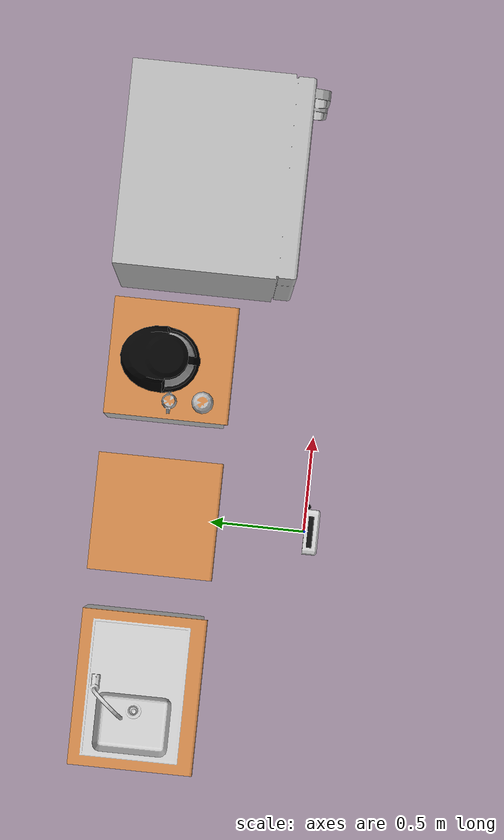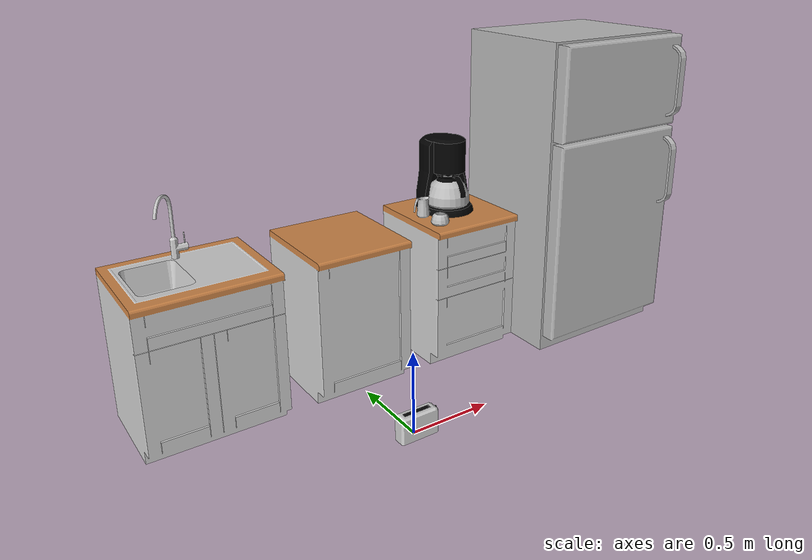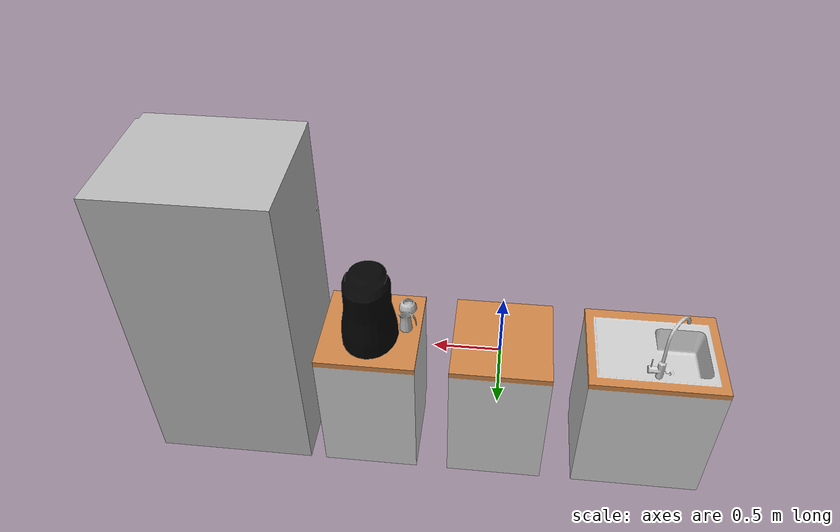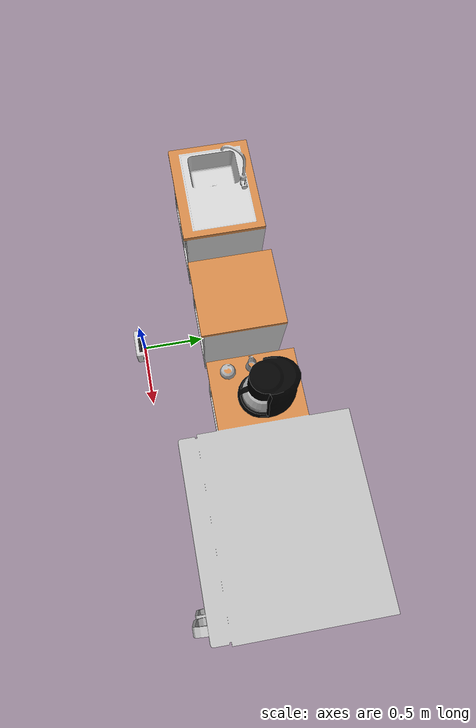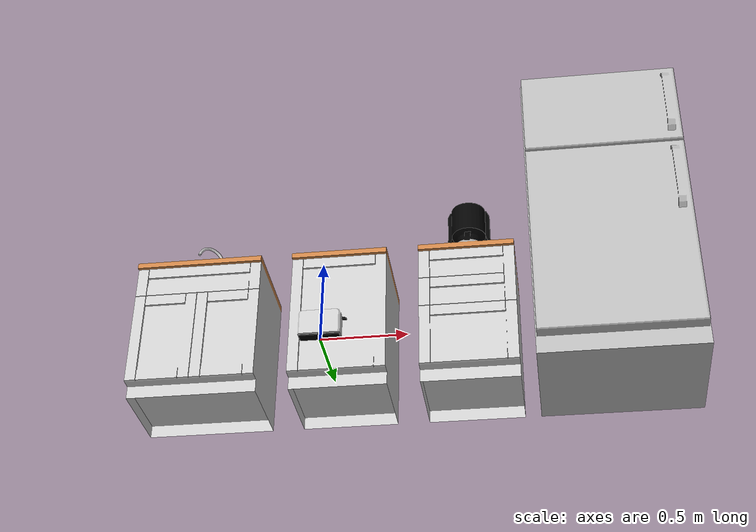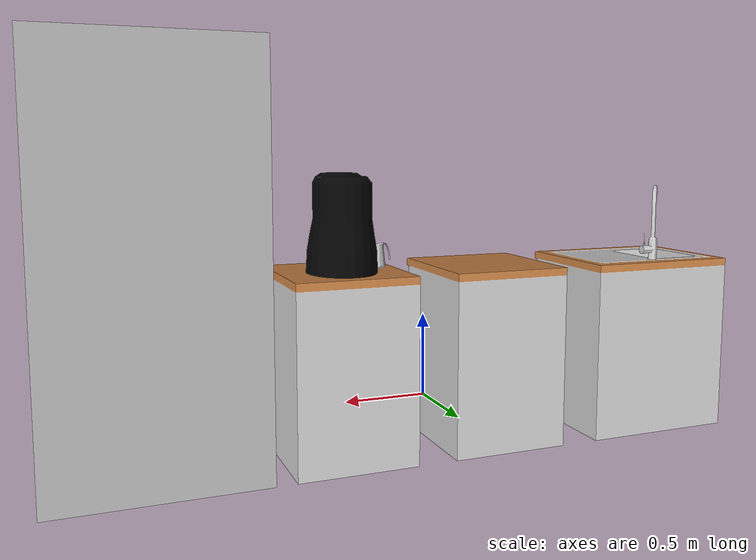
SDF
<sdf version="1.4">
	<model name="toaster">
		<link name="link">
			<visual name="mesh">
				<geometry>
					<mesh>
						<uri>model://meshes/toaster.dae</uri>
					</mesh>
				</geometry>
			</visual>
			<collision name="collider">
				<pose>0 0 0.08 0 0 0</pose>
				<geometry>
					<box>
						<size>0.26 0.15 0.16</size>
					</box>
				</geometry>
			</collision>
		</link>
	</model>
</sdf>
